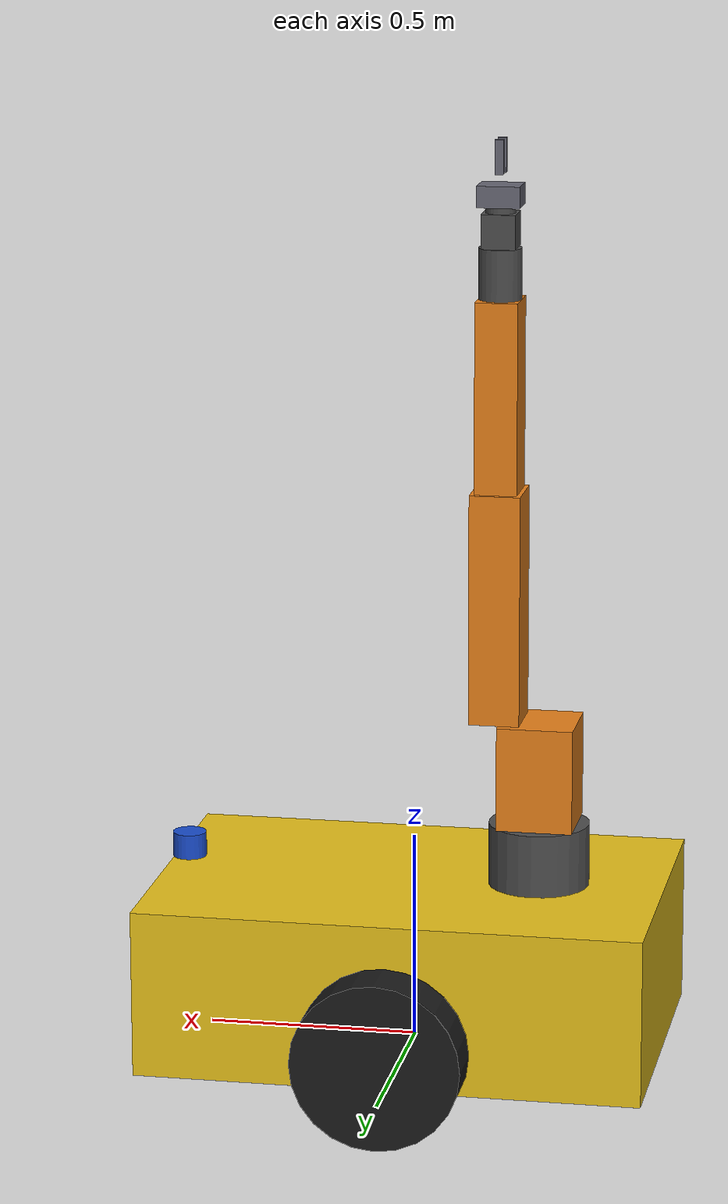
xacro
<?xml version="1.0"?>
<!--
  BrickBot top-level composition.
  Usage:
    xacro brickbot.urdf.xacro prefix:=robot_a_ tool:=gripper
-->
<robot name="brickbot" xmlns:xacro="http://www.ros.org/wiki/xacro">

  <xacro:arg name="prefix" default=""/>
  <xacro:arg name="tool"   default="gripper"/>
  <xacro:arg name="ns"     default=""/>

  <xacro:property name="pfx" value="$(arg prefix)"/>
  <xacro:property name="tool_type" value="$(arg tool)"/>
  <xacro:property name="ns" value="$(arg ns)"/>

  <xacro:include filename="$(find brickbot_description)/urdf/base_tracked.xacro"/>
  <xacro:include filename="$(find brickbot_description)/urdf/arm_6dof.xacro"/>
  <xacro:include filename="$(find brickbot_description)/urdf/tool_gripper.xacro"/>
  <xacro:include filename="$(find brickbot_description)/urdf/tool_cement.xacro"/>
  <xacro:include filename="$(find brickbot_description)/urdf/brickbot.ros2_control.xacro"/>

  <xacro:base_tracked prefix="${pfx}"/>

  <xacro:arm_6dof prefix="${pfx}arm_" parent="${pfx}base_link">
    <origin xyz="-0.3 0 0.2" rpy="0 0 0"/>
  </xacro:arm_6dof>

  <xacro:if value="${tool_type == 'gripper'}">
    <xacro:tool_gripper prefix="${pfx}arm_" parent="${pfx}arm_tool0"/>
  </xacro:if>
  <xacro:if value="${tool_type == 'cement'}">
    <xacro:tool_cement prefix="${pfx}arm_" parent="${pfx}arm_tool0"/>
  </xacro:if>

  <xacro:brickbot_ros2_control prefix="${pfx}" ns="${ns}"/>

</robot>

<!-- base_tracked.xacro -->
<!-- Tracked mobile base: chassis + 2 tracks modeled as diff-drive wheels (Harmonic fallback). -->
<robot xmlns:xacro="http://www.ros.org/wiki/xacro">

  <xacro:macro name="base_tracked" params="prefix">

    <link name="${prefix}base_footprint"/>

    <joint name="${prefix}base_joint" type="fixed">
      <parent link="${prefix}base_footprint"/>
      <child link="${prefix}base_link"/>
      <origin xyz="0 0 0.2"/>
    </joint>

    <link name="${prefix}base_link">
      <visual>
        <geometry><box size="1.2 0.8 0.4"/></geometry>
        <material name="chassis_yellow"><color rgba="0.9 0.75 0.1 1"/></material>
      </visual>
      <collision><geometry><box size="1.2 0.8 0.4"/></geometry></collision>
      <inertial>
        <mass value="150.0"/>
        <inertia ixx="10.0" iyy="20.0" izz="25.0" ixy="0" ixz="0" iyz="0"/>
      </inertial>
    </link>

    <xacro:macro name="track_wheel" params="side ysign">
      <joint name="${prefix}${side}_track_joint" type="continuous">
        <parent link="${prefix}base_link"/>
        <child link="${prefix}${side}_track_link"/>
        <origin xyz="0 ${ysign*0.45} -0.1" rpy="-1.5708 0 0"/>
        <axis xyz="0 0 1"/>
        <dynamics damping="0.5" friction="0.3"/>
      </joint>
      <link name="${prefix}${side}_track_link">
        <visual>
          <geometry><cylinder radius="0.2" length="0.15"/></geometry>
          <material name="track_black"><color rgba="0.1 0.1 0.1 1"/></material>
        </visual>
        <collision><geometry><cylinder radius="0.2" length="0.15"/></geometry></collision>
        <inertial>
          <mass value="10.0"/>
          <inertia ixx="0.1" iyy="0.1" izz="0.2" ixy="0" ixz="0" iyz="0"/>
        </inertial>
      </link>
    </xacro:macro>

    <xacro:track_wheel side="left"  ysign="1"/>
    <xacro:track_wheel side="right" ysign="-1"/>

    <!-- Lidar mount -->
    <joint name="${prefix}lidar_joint" type="fixed">
      <parent link="${prefix}base_link"/>
      <child link="${prefix}lidar_link"/>
      <origin xyz="0.55 0 0.25"/>
    </joint>
    <link name="${prefix}lidar_link">
      <visual><geometry><cylinder radius="0.04" length="0.06"/></geometry><material name="sensor_blue"><color rgba="0.1 0.3 0.8 1"/></material></visual>
      <collision><geometry><cylinder radius="0.04" length="0.06"/></geometry></collision>
      <inertial><mass value="0.2"/><inertia ixx="0.0001" iyy="0.0001" izz="0.0001" ixy="0" ixz="0" iyz="0"/></inertial>
    </link>

    <!-- IMU -->
    <joint name="${prefix}imu_joint" type="fixed">
      <parent link="${prefix}base_link"/>
      <child link="${prefix}imu_link"/>
      <origin xyz="0 0 0.1"/>
    </joint>
    <link name="${prefix}imu_link">
      <inertial><mass value="0.05"/><inertia ixx="0.00001" iyy="0.00001" izz="0.00001" ixy="0" ixz="0" iyz="0"/></inertial>
    </link>

  </xacro:macro>

</robot>

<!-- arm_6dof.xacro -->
<robot xmlns:xacro="http://www.ros.org/wiki/xacro">

  <xacro:macro name="arm_6dof" params="prefix parent *origin">

    <!-- Shoulder mount plate -->
    <joint name="${prefix}mount_joint" type="fixed">
      <xacro:insert_block name="origin"/>
      <parent link="${parent}"/>
      <child link="${prefix}base_link"/>
    </joint>

    <link name="${prefix}base_link">
      <visual>
        <geometry><cylinder radius="0.12" length="0.15"/></geometry>
        <origin xyz="0 0 0.075"/>
        <material name="arm_grey"><color rgba="0.3 0.3 0.3 1"/></material>
      </visual>
      <collision>
        <geometry><cylinder radius="0.12" length="0.15"/></geometry>
        <origin xyz="0 0 0.075"/>
      </collision>
      <inertial>
        <mass value="4.0"/>
        <inertia ixx="0.02" iyy="0.02" izz="0.03" ixy="0" ixz="0" iyz="0"/>
      </inertial>
    </link>

    <!-- J1: Base rotation -->
    <joint name="${prefix}j1" type="revolute">
      <parent link="${prefix}base_link"/>
      <child link="${prefix}link1"/>
      <origin xyz="0 0 0.15" rpy="0 0 0"/>
      <axis xyz="0 0 1"/>
      <limit lower="-3.23" upper="3.23" effort="80" velocity="3.14"/>
      <dynamics damping="0.5" friction="0.1"/>
    </joint>
    <link name="${prefix}link1">
      <visual>
        <geometry><box size="0.18 0.18 0.25"/></geometry>
        <origin xyz="0 0 0.125"/>
        <material name="arm_orange"><color rgba="0.9 0.5 0.1 1"/></material>
      </visual>
      <collision><geometry><box size="0.18 0.18 0.25"/></geometry><origin xyz="0 0 0.125"/></collision>
      <inertial><mass value="6.0"/><inertia ixx="0.05" iyy="0.05" izz="0.03" ixy="0" ixz="0" iyz="0"/></inertial>
    </link>

    <!-- J2: Shoulder pitch -->
    <joint name="${prefix}j2" type="revolute">
      <parent link="${prefix}link1"/>
      <child link="${prefix}link2"/>
      <origin xyz="0.1 0 0.25" rpy="0 0 0"/>
      <axis xyz="0 1 0"/>
      <limit lower="-2.70" upper="0.61" effort="80" velocity="2.5"/>
      <dynamics damping="0.5" friction="0.1"/>
    </joint>
    <link name="${prefix}link2">
      <visual>
        <geometry><box size="0.12 0.14 0.55"/></geometry>
        <origin xyz="0 0 0.275"/>
        <material name="arm_orange"/>
      </visual>
      <collision><geometry><box size="0.12 0.14 0.55"/></geometry><origin xyz="0 0 0.275"/></collision>
      <inertial><mass value="5.0"/><inertia ixx="0.14" iyy="0.14" izz="0.02" ixy="0" ixz="0" iyz="0"/></inertial>
    </link>

    <!-- J3: Elbow -->
    <joint name="${prefix}j3" type="revolute">
      <parent link="${prefix}link2"/>
      <child link="${prefix}link3"/>
      <origin xyz="0 0 0.55" rpy="0 0 0"/>
      <axis xyz="0 1 0"/>
      <limit lower="-2.27" upper="2.69" effort="60" velocity="2.8"/>
      <dynamics damping="0.5" friction="0.1"/>
    </joint>
    <link name="${prefix}link3">
      <visual>
        <geometry><box size="0.10 0.12 0.45"/></geometry>
        <origin xyz="0 0 0.225"/>
        <material name="arm_orange"/>
      </visual>
      <collision><geometry><box size="0.10 0.12 0.45"/></geometry><origin xyz="0 0 0.225"/></collision>
      <inertial><mass value="3.5"/><inertia ixx="0.07" iyy="0.07" izz="0.01" ixy="0" ixz="0" iyz="0"/></inertial>
    </link>

    <!-- J4: Wrist roll -->
    <joint name="${prefix}j4" type="revolute">
      <parent link="${prefix}link3"/>
      <child link="${prefix}link4"/>
      <origin xyz="0 0 0.45" rpy="0 0 0"/>
      <axis xyz="0 0 1"/>
      <limit lower="-6.10" upper="6.10" effort="20" velocity="5.0"/>
      <dynamics damping="0.2" friction="0.05"/>
    </joint>
    <link name="${prefix}link4">
      <visual><geometry><cylinder radius="0.05" length="0.12"/></geometry><origin xyz="0 0 0.06"/><material name="arm_grey"/></visual>
      <collision><geometry><cylinder radius="0.05" length="0.12"/></geometry><origin xyz="0 0 0.06"/></collision>
      <inertial><mass value="1.2"/><inertia ixx="0.002" iyy="0.002" izz="0.001" ixy="0" ixz="0" iyz="0"/></inertial>
    </link>

    <!-- J5: Wrist pitch -->
    <joint name="${prefix}j5" type="revolute">
      <parent link="${prefix}link4"/>
      <child link="${prefix}link5"/>
      <origin xyz="0 0 0.12" rpy="0 0 0"/>
      <axis xyz="0 1 0"/>
      <limit lower="-2.27" upper="2.27" effort="20" velocity="5.0"/>
      <dynamics damping="0.2" friction="0.05"/>
    </joint>
    <link name="${prefix}link5">
      <visual><geometry><box size="0.08 0.08 0.08"/></geometry><origin xyz="0 0 0.04"/><material name="arm_grey"/></visual>
      <collision><geometry><box size="0.08 0.08 0.08"/></geometry><origin xyz="0 0 0.04"/></collision>
      <inertial><mass value="0.8"/><inertia ixx="0.001" iyy="0.001" izz="0.001" ixy="0" ixz="0" iyz="0"/></inertial>
    </link>

    <!-- J6: Tool rotation -->
    <joint name="${prefix}j6" type="revolute">
      <parent link="${prefix}link5"/>
      <child link="${prefix}tool0"/>
      <origin xyz="0 0 0.08" rpy="0 0 0"/>
      <axis xyz="0 0 1"/>
      <limit lower="-6.10" upper="6.10" effort="15" velocity="6.0"/>
      <dynamics damping="0.1" friction="0.02"/>
    </joint>
    <link name="${prefix}tool0">
      <visual><geometry><cylinder radius="0.035" length="0.04"/></geometry><origin xyz="0 0 0.02"/><material name="arm_grey"/></visual>
      <collision><geometry><cylinder radius="0.035" length="0.04"/></geometry><origin xyz="0 0 0.02"/></collision>
      <inertial><mass value="0.3"/><inertia ixx="0.0002" iyy="0.0002" izz="0.0002" ixy="0" ixz="0" iyz="0"/></inertial>
    </link>

  </xacro:macro>

</robot>

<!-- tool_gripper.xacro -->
<!-- Parallel-jaw gripper with mimic joint. -->
<robot xmlns:xacro="http://www.ros.org/wiki/xacro">
  <xacro:macro name="tool_gripper" params="prefix parent">

    <joint name="${prefix}gripper_base_joint" type="fixed">
      <parent link="${parent}"/>
      <child link="${prefix}gripper_base"/>
      <origin xyz="0 0 0.04"/>
    </joint>
    <link name="${prefix}gripper_base">
      <visual><geometry><box size="0.10 0.08 0.05"/></geometry><material name="tool_grey"><color rgba="0.4 0.4 0.45 1"/></material></visual>
      <collision><geometry><box size="0.10 0.08 0.05"/></geometry></collision>
      <inertial><mass value="0.5"/><inertia ixx="0.0005" iyy="0.0005" izz="0.0005" ixy="0" ixz="0" iyz="0"/></inertial>
    </link>

    <joint name="${prefix}gripper_left_finger" type="prismatic">
      <parent link="${prefix}gripper_base"/>
      <child link="${prefix}left_finger"/>
      <origin xyz="0 0.02 0.05"/>
      <axis xyz="0 1 0"/>
      <limit lower="0.0" upper="0.04" effort="60" velocity="0.1"/>
    </joint>
    <link name="${prefix}left_finger">
      <visual><geometry><box size="0.02 0.015 0.08"/></geometry><origin xyz="0 0 0.04"/><material name="tool_grey"/></visual>
      <collision><geometry><box size="0.02 0.015 0.08"/></geometry><origin xyz="0 0 0.04"/></collision>
      <inertial><mass value="0.1"/><inertia ixx="0.0001" iyy="0.0001" izz="0.0001" ixy="0" ixz="0" iyz="0"/></inertial>
    </link>

    <joint name="${prefix}gripper_right_finger" type="prismatic">
      <parent link="${prefix}gripper_base"/>
      <child link="${prefix}right_finger"/>
      <origin xyz="0 -0.02 0.05"/>
      <axis xyz="0 -1 0"/>
      <limit lower="0.0" upper="0.04" effort="60" velocity="0.1"/>
      <mimic joint="${prefix}gripper_left_finger" multiplier="1.0" offset="0"/>
    </joint>
    <link name="${prefix}right_finger">
      <visual><geometry><box size="0.02 0.015 0.08"/></geometry><origin xyz="0 0 0.04"/><material name="tool_grey"/></visual>
      <collision><geometry><box size="0.02 0.015 0.08"/></geometry><origin xyz="0 0 0.04"/></collision>
      <inertial><mass value="0.1"/><inertia ixx="0.0001" iyy="0.0001" izz="0.0001" ixy="0" ixz="0" iyz="0"/></inertial>
    </link>

    <!-- TCP frame -->
    <joint name="${prefix}tcp_joint" type="fixed">
      <parent link="${prefix}gripper_base"/>
      <child link="${prefix}tcp"/>
      <origin xyz="0 0 0.13"/>
    </joint>
    <link name="${prefix}tcp"/>

  </xacro:macro>
</robot>
